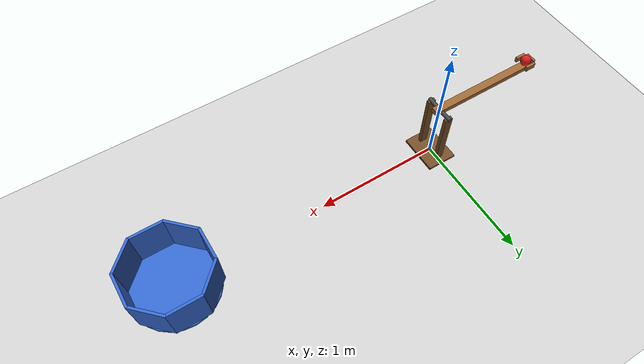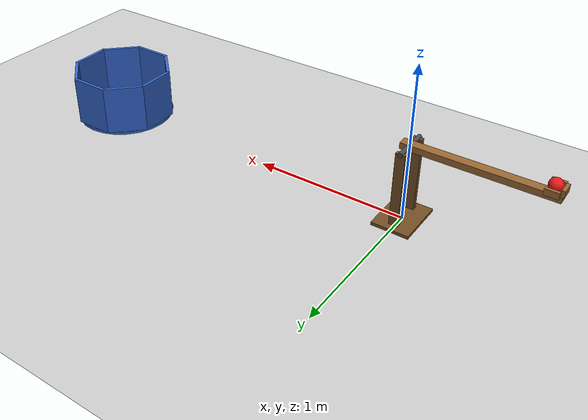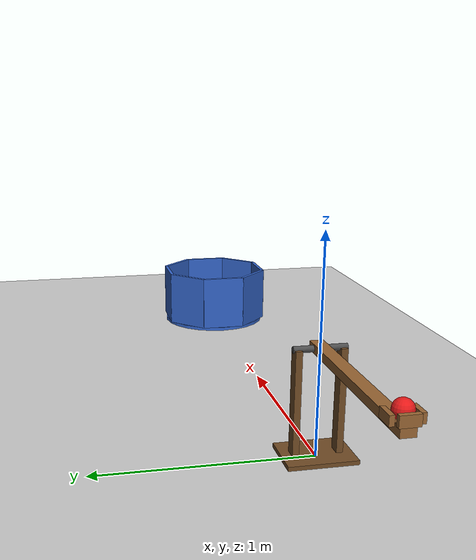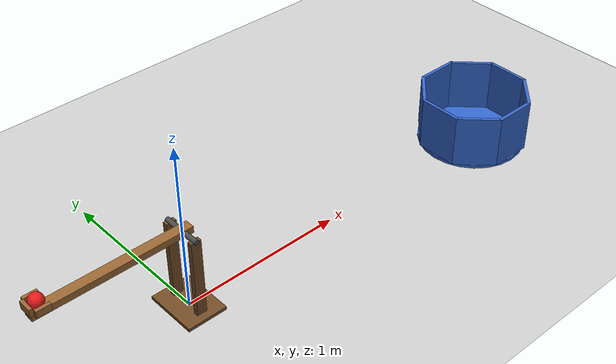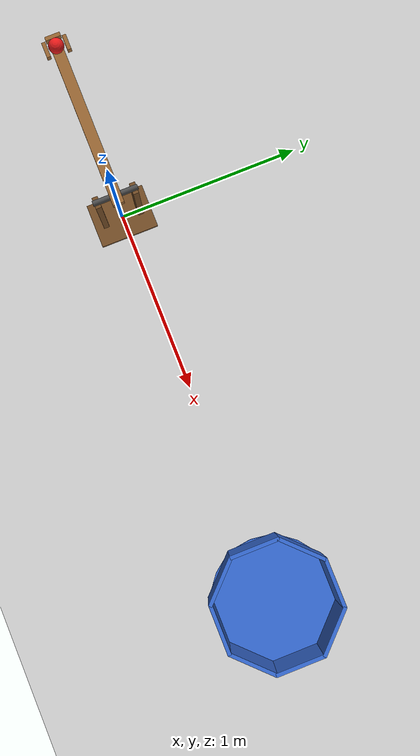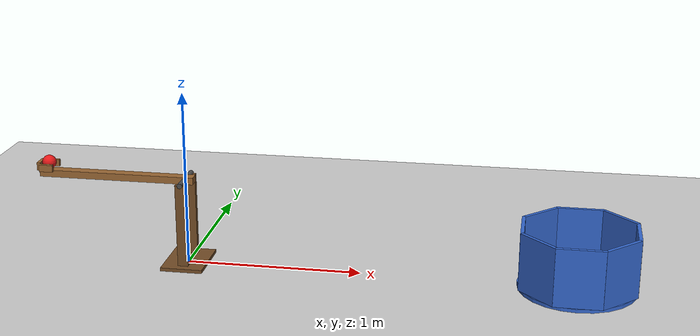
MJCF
<mujoco model="catapult_to_bucket">
  <compiler angle="radian"/>
  <option timestep="0.002" gravity="0 0 -9.81"/>

  <worldbody>
    <light name="sun" pos="1 0 4" dir="0 0 -1" directional="true"/>
    <geom name="floor" type="plane" size="6 6 0.1" pos="0 0 0" rgba="0.8 0.8 0.8 1"/>

    <!-- Catapult frame (static) -->
    <body name="catapult_frame" pos="0 0 0">
      <geom name="catapult_base" type="box" size="0.12 0.16 0.01" pos="0 0 0.01" rgba="0.45 0.3 0.15 1"/>
      <geom name="catapult_post_left" type="box" size="0.03 0.015 0.25" pos="0 0.1 0.25" rgba="0.45 0.3 0.15 1"/>
      <geom name="catapult_post_right" type="box" size="0.03 0.015 0.25" pos="0 -0.1 0.25" rgba="0.45 0.3 0.15 1"/>

      <!-- Throwing arm: points toward -x at angle 0, swings up and forward about +y -->
      <body name="catapult_arm" pos="0 0 0.5">
        <joint name="catapult_hinge" type="hinge" axis="0 1 0" limited="true" range="0 0.7105" solreflimit="0.005 1" damping="0"/>
        <geom name="catapult_pin" type="cylinder" size="0.015 0.12" pos="0 0 0" euler="1.5708 0 0" mass="0.05" contype="0" conaffinity="0" rgba="0.3 0.3 0.3 1"/>
        <geom name="catapult_beam" type="box" size="0.45 0.03 0.02" pos="-0.4 0 0" mass="0.5" solref="0.005 1" rgba="0.6 0.4 0.2 1"/>
        <geom name="catapult_lip" type="box" size="0.01 0.04 0.0225" pos="-0.85 0 0.0425" mass="0.02" solref="0.005 1" rgba="0.6 0.4 0.2 1"/>
        <geom name="catapult_rail_left" type="box" size="0.04 0.01 0.02" pos="-0.8 0.055 0.04" mass="0.01" solref="0.005 1" rgba="0.6 0.4 0.2 1"/>
        <geom name="catapult_rail_right" type="box" size="0.04 0.01 0.02" pos="-0.8 -0.055 0.04" mass="0.01" solref="0.005 1" rgba="0.6 0.4 0.2 1"/>
      </body>
    </body>

    <!-- Ball, resting in the cup at the arm tip -->
    <body name="ball" pos="-0.8 0 0.56">
      <freejoint name="ball_free"/>
      <geom name="ball" type="sphere" size="0.04" mass="0.268" condim="6" friction="1 0.02 0.02" solref="0.005 1" rgba="0.9 0.1 0.1 1"/>
    </body>

    <!-- Bucket: centre 3 m (in x) from the ball start, open octagonal cup -->
    <body name="bucket" pos="2.2 0 0">
      <geom name="bucket_bottom" type="cylinder" size="0.33 0.01" pos="0 0 0.01" rgba="0.2 0.4 0.8 1"/>
      <geom name="bucket_wall_0" type="box" size="0.01 0.133 0.165" pos="0.31 0 0.185" euler="0 0 0" rgba="0.2 0.4 0.8 1"/>
      <geom name="bucket_wall_1" type="box" size="0.01 0.133 0.165" pos="0.2192 0.2192 0.185" euler="0 0 0.7854" rgba="0.2 0.4 0.8 1"/>
      <geom name="bucket_wall_2" type="box" size="0.01 0.133 0.165" pos="0 0.31 0.185" euler="0 0 1.5708" rgba="0.2 0.4 0.8 1"/>
      <geom name="bucket_wall_3" type="box" size="0.01 0.133 0.165" pos="-0.2192 0.2192 0.185" euler="0 0 2.3562" rgba="0.2 0.4 0.8 1"/>
      <geom name="bucket_wall_4" type="box" size="0.01 0.133 0.165" pos="-0.31 0 0.185" euler="0 0 3.1416" rgba="0.2 0.4 0.8 1"/>
      <geom name="bucket_wall_5" type="box" size="0.01 0.133 0.165" pos="-0.2192 -0.2192 0.185" euler="0 0 3.9270" rgba="0.2 0.4 0.8 1"/>
      <geom name="bucket_wall_6" type="box" size="0.01 0.133 0.165" pos="0 -0.31 0.185" euler="0 0 4.7124" rgba="0.2 0.4 0.8 1"/>
      <geom name="bucket_wall_7" type="box" size="0.01 0.133 0.165" pos="0.2192 -0.2192 0.185" euler="0 0 5.4978" rgba="0.2 0.4 0.8 1"/>
    </body>
  </worldbody>

  <actuator>
    <velocity name="catapult_motor" joint="catapult_hinge" kv="50" ctrllimited="true" ctrlrange="0 10" forcelimited="true" forcerange="-25 25"/>
  </actuator>

  <keyframe>
    <key name="start" qpos="0 -0.8 0 0.56 1 0 0 0" qvel="0 0 0 0 0 0 0" ctrl="5.7316"/>
  </keyframe>
</mujoco>
